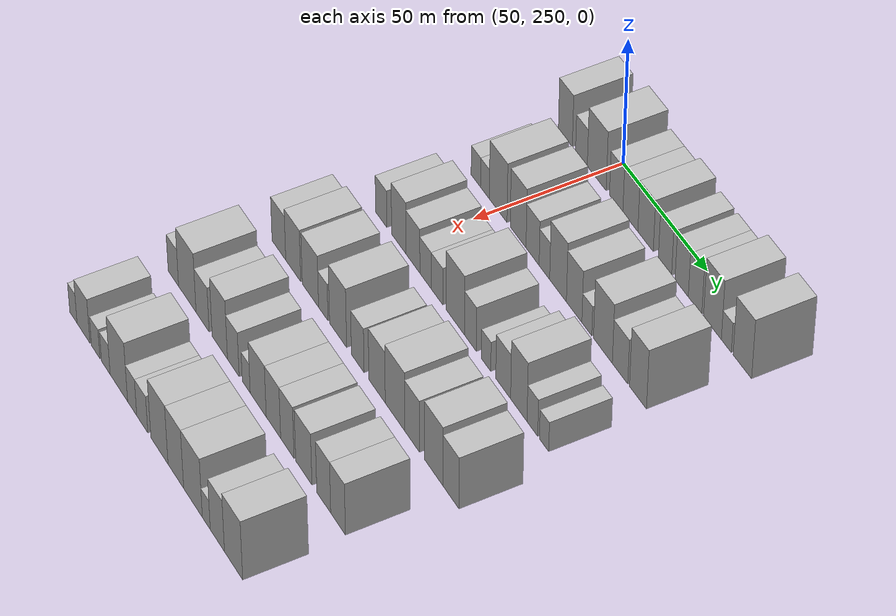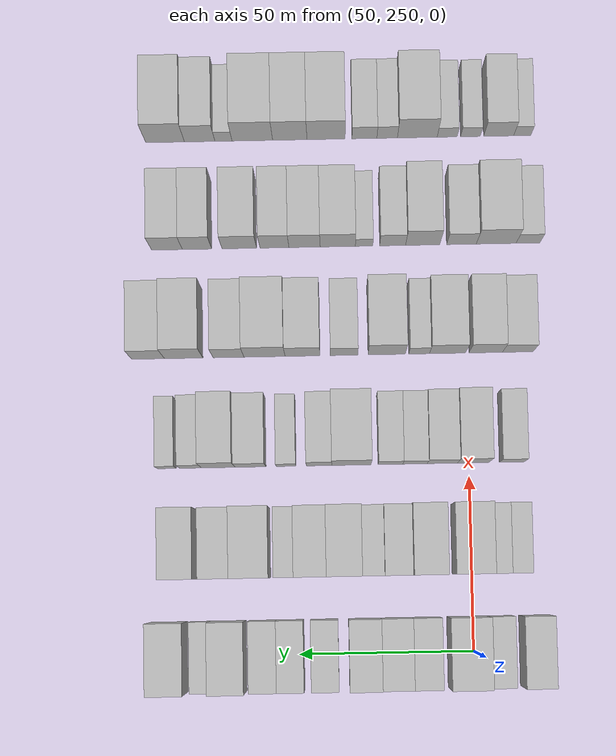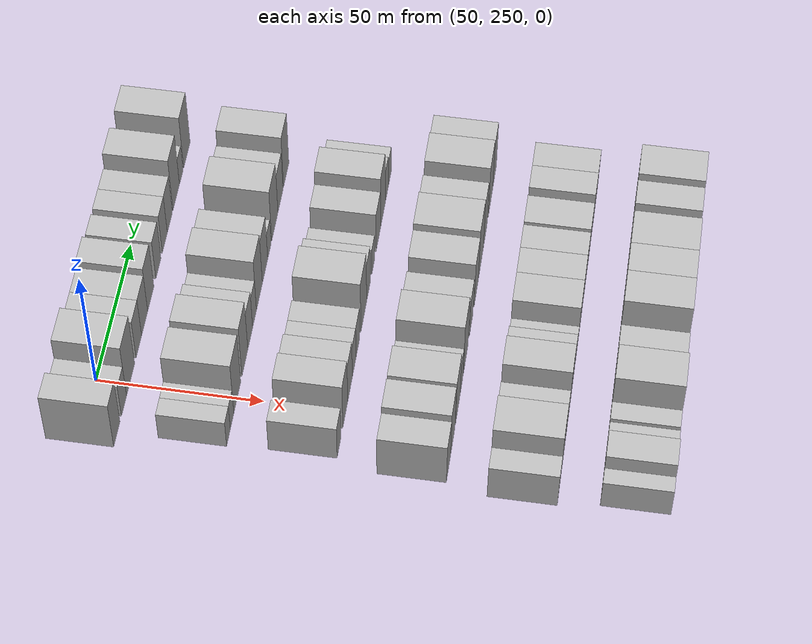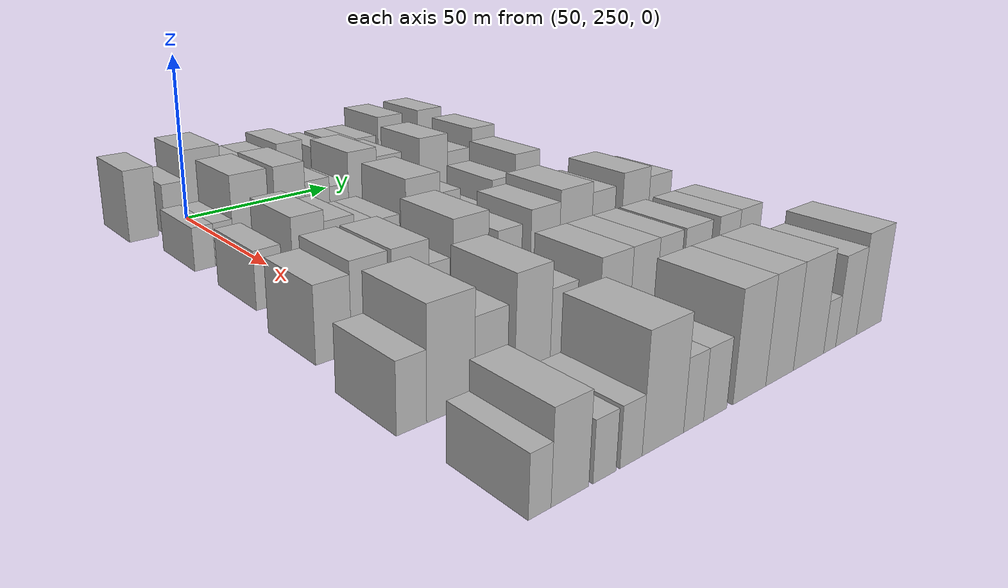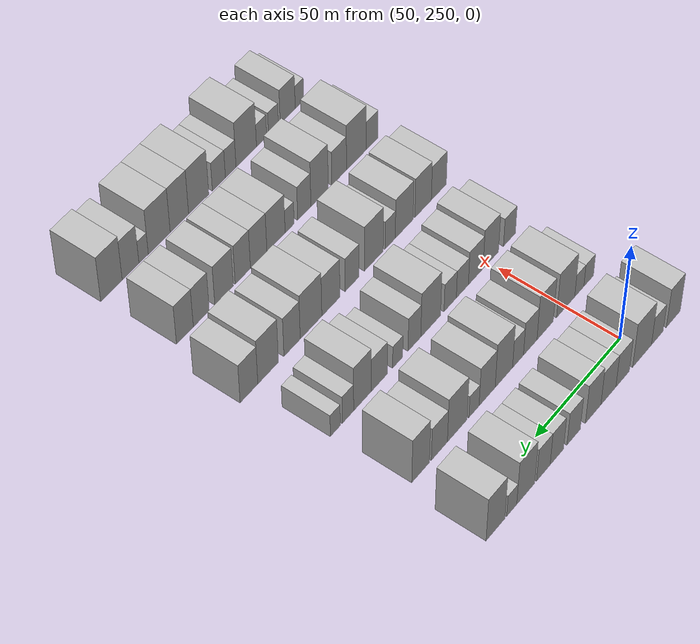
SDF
<sdf version="1.6">
 <world name="default">
  <model name="building_78">
   <static>1</static>
   <pose>50.0000 232.6043 0 0.000000 0.000000 0.000000</pose>
   <link name="link">
    <pose>0 0 10.50 0 0 0</pose>
    <collision name="collision"><geometry><box><size>20.0000 8.6318 21.0000</size></box></geometry></collision>
    <visual name="visual">
     <cast_shadows>0</cast_shadows>
     <geometry><box><size>20.0000 8.6318 21.0000</size></box></geometry>
     <material>
      <script>
       <uri>model://HANNAS_wall/materials/scripts</uri>
       <uri>model://HANNAS_wall/materials/textures</uri>
       <name>vrc/HANNAS_wall</name>
      </script>
     </material>
    </visual>
   </link>
  </model>
  <model name="building_79">
   <static>1</static>
   <pose>50.0000 242.5200 0 0.000000 0.000000 0.000000</pose>
   <link name="link">
    <pose>0 0 7.50 0 0 0</pose>
    <collision name="collision"><geometry><box><size>20.0000 7.1996 15.0000</size></box></geometry></collision>
    <visual name="visual">
     <cast_shadows>0</cast_shadows>
     <geometry><box><size>20.0000 7.1996 15.0000</size></box></geometry>
     <material>
      <script>
       <uri>model://HANNAS_wall/materials/scripts</uri>
       <uri>model://HANNAS_wall/materials/textures</uri>
       <name>vrc/HANNAS_wall</name>
      </script>
     </material>
    </visual>
   </link>
  </model>
  <model name="building_80">
   <static>1</static>
   <pose>50.0000 251.8541 0 0.000000 0.000000 0.000000</pose>
   <link name="link">
    <pose>0 0 12.00 0 0 0</pose>
    <collision name="collision"><geometry><box><size>20.0000 11.4685 24.0000</size></box></geometry></collision>
    <visual name="visual">
     <cast_shadows>0</cast_shadows>
     <geometry><box><size>20.0000 11.4685 24.0000</size></box></geometry>
     <material>
      <script>
       <uri>model://HANNAS_wall/materials/scripts</uri>
       <uri>model://HANNAS_wall/materials/textures</uri>
       <name>vrc/HANNAS_wall</name>
      </script>
     </material>
    </visual>
   </link>
  </model>
  <model name="building_81">
   <static>1</static>
   <pose>50.0000 263.6289 0 0.000000 0.000000 0.000000</pose>
   <link name="link">
    <pose>0 0 9.00 0 0 0</pose>
    <collision name="collision"><geometry><box><size>20.0000 8.0811 18.0000</size></box></geometry></collision>
    <visual name="visual">
     <cast_shadows>0</cast_shadows>
     <geometry><box><size>20.0000 8.0811 18.0000</size></box></geometry>
     <material>
      <script>
       <uri>model://HANNAS_wall/materials/scripts</uri>
       <uri>model://HANNAS_wall/materials/textures</uri>
       <name>vrc/HANNAS_wall</name>
      </script>
     </material>
    </visual>
   </link>
  </model>
  <model name="building_82">
   <static>1</static>
   <pose>50.0000 272.1463 0 0.000000 0.000000 0.000000</pose>
   <link name="link">
    <pose>0 0 9.00 0 0 0</pose>
    <collision name="collision"><geometry><box><size>20.0000 8.9538 18.0000</size></box></geometry></collision>
    <visual name="visual">
     <cast_shadows>0</cast_shadows>
     <geometry><box><size>20.0000 8.9538 18.0000</size></box></geometry>
     <material>
      <script>
       <uri>model://HANNAS_wall/materials/scripts</uri>
       <uri>model://HANNAS_wall/materials/textures</uri>
       <name>vrc/HANNAS_wall</name>
      </script>
     </material>
    </visual>
   </link>
  </model>
  <model name="building_83">
   <static>1</static>
   <pose>50.0000 281.1949 0 0.000000 0.000000 0.000000</pose>
   <link name="link">
    <pose>0 0 10.50 0 0 0</pose>
    <collision name="collision"><geometry><box><size>20.0000 9.1433 21.0000</size></box></geometry></collision>
    <visual name="visual">
     <cast_shadows>0</cast_shadows>
     <geometry><box><size>20.0000 9.1433 21.0000</size></box></geometry>
     <material>
      <script>
       <uri>model://HANNAS_wall/materials/scripts</uri>
       <uri>model://HANNAS_wall/materials/textures</uri>
       <name>vrc/HANNAS_wall</name>
      </script>
     </material>
    </visual>
   </link>
  </model>
  <model name="building_84">
   <static>1</static>
   <pose>50.0000 292.6517 0 0.000000 0.000000 0.000000</pose>
   <link name="link">
    <pose>0 0 9.00 0 0 0</pose>
    <collision name="collision"><geometry><box><size>20.0000 7.7703 18.0000</size></box></geometry></collision>
    <visual name="visual">
     <cast_shadows>0</cast_shadows>
     <geometry><box><size>20.0000 7.7703 18.0000</size></box></geometry>
     <material>
      <script>
       <uri>model://HANNAS_wall/materials/scripts</uri>
       <uri>model://HANNAS_wall/materials/textures</uri>
       <name>vrc/HANNAS_wall</name>
      </script>
     </material>
    </visual>
   </link>
  </model>
  <model name="building_85">
   <static>1</static>
   <pose>50.0000 302.3955 0 0.000000 0.000000 0.000000</pose>
   <link name="link">
    <pose>0 0 9.00 0 0 0</pose>
    <collision name="collision"><geometry><box><size>20.0000 7.7174 18.0000</size></box></geometry></collision>
    <visual name="visual">
     <cast_shadows>0</cast_shadows>
     <geometry><box><size>20.0000 7.7174 18.0000</size></box></geometry>
     <material>
      <script>
       <uri>model://HANNAS_wall/materials/scripts</uri>
       <uri>model://HANNAS_wall/materials/textures</uri>
       <name>vrc/HANNAS_wall</name>
      </script>
     </material>
    </visual>
   </link>
  </model>
  <model name="building_86">
   <static>1</static>
   <pose>50.0000 310.1619 0 0.000000 0.000000 0.000000</pose>
   <link name="link">
    <pose>0 0 9.00 0 0 0</pose>
    <collision name="collision"><geometry><box><size>20.0000 7.8153 18.0000</size></box></geometry></collision>
    <visual name="visual">
     <cast_shadows>0</cast_shadows>
     <geometry><box><size>20.0000 7.8153 18.0000</size></box></geometry>
     <material>
      <script>
       <uri>model://HANNAS_wall/materials/scripts</uri>
       <uri>model://HANNAS_wall/materials/textures</uri>
       <name>vrc/HANNAS_wall</name>
      </script>
     </material>
    </visual>
   </link>
  </model>
  <model name="building_87">
   <static>1</static>
   <pose>50.0000 320.1657 0 0.000000 0.000000 0.000000</pose>
   <link name="link">
    <pose>0 0 12.00 0 0 0</pose>
    <collision name="collision"><geometry><box><size>20.0000 10.1923 24.0000</size></box></geometry></collision>
    <visual name="visual">
     <cast_shadows>0</cast_shadows>
     <geometry><box><size>20.0000 10.1923 24.0000</size></box></geometry>
     <material>
      <script>
       <uri>model://HANNAS_wall/materials/scripts</uri>
       <uri>model://HANNAS_wall/materials/textures</uri>
       <name>vrc/HANNAS_wall</name>
      </script>
     </material>
    </visual>
   </link>
  </model>
  <model name="building_88">
   <static>1</static>
   <pose>50.0000 328.0957 0 0.000000 0.000000 0.000000</pose>
   <link name="link">
    <pose>0 0 6.00 0 0 0</pose>
    <collision name="collision"><geometry><box><size>20.0000 5.6677 12.0000</size></box></geometry></collision>
    <visual name="visual">
     <cast_shadows>0</cast_shadows>
     <geometry><box><size>20.0000 5.6677 12.0000</size></box></geometry>
     <material>
      <script>
       <uri>model://HANNAS_wall/materials/scripts</uri>
       <uri>model://HANNAS_wall/materials/textures</uri>
       <name>vrc/HANNAS_wall</name>
      </script>
     </material>
    </visual>
   </link>
  </model>
  <model name="building_89">
   <static>1</static>
   <pose>50.0000 337.1441 0 0.000000 0.000000 0.000000</pose>
   <link name="link">
    <pose>0 0 12.00 0 0 0</pose>
    <collision name="collision"><geometry><box><size>20.0000 10.4292 24.0000</size></box></geometry></collision>
    <visual name="visual">
     <cast_shadows>0</cast_shadows>
     <geometry><box><size>20.0000 10.4292 24.0000</size></box></geometry>
     <material>
      <script>
       <uri>model://HANNAS_wall/materials/scripts</uri>
       <uri>model://HANNAS_wall/materials/textures</uri>
       <name>vrc/HANNAS_wall</name>
      </script>
     </material>
    </visual>
   </link>
  </model>
  <model name="building_200">
   <static>1</static>
   <pose>82.0000 236.2181 0 0.000000 0.000000 0.000000</pose>
   <link name="link">
    <pose>0 0 6.00 0 0 0</pose>
    <collision name="collision"><geometry><box><size>20.0000 5.8722 12.0000</size></box></geometry></collision>
    <visual name="visual">
     <cast_shadows>0</cast_shadows>
     <geometry><box><size>20.0000 5.8722 12.0000</size></box></geometry>
     <material>
      <script>
       <uri>model://HANNAS_wall/materials/scripts</uri>
       <uri>model://HANNAS_wall/materials/textures</uri>
       <name>vrc/HANNAS_wall</name>
      </script>
     </material>
    </visual>
   </link>
  </model>
  <model name="building_201">
   <static>1</static>
   <pose>82.0000 241.9286 0 0.000000 0.000000 0.000000</pose>
   <link name="link">
    <pose>0 0 6.00 0 0 0</pose>
    <collision name="collision"><geometry><box><size>20.0000 5.5488 12.0000</size></box></geometry></collision>
    <visual name="visual">
     <cast_shadows>0</cast_shadows>
     <geometry><box><size>20.0000 5.5488 12.0000</size></box></geometry>
     <material>
      <script>
       <uri>model://HANNAS_wall/materials/scripts</uri>
       <uri>model://HANNAS_wall/materials/textures</uri>
       <name>vrc/HANNAS_wall</name>
      </script>
     </material>
    </visual>
   </link>
  </model>
  <model name="building_202">
   <static>1</static>
   <pose>82.0000 250.1904 0 0.000000 0.000000 0.000000</pose>
   <link name="link">
    <pose>0 0 12.00 0 0 0</pose>
    <collision name="collision"><geometry><box><size>20.0000 10.9749 24.0000</size></box></geometry></collision>
    <visual name="visual">
     <cast_shadows>0</cast_shadows>
     <geometry><box><size>20.0000 10.9749 24.0000</size></box></geometry>
     <material>
      <script>
       <uri>model://HANNAS_wall/materials/scripts</uri>
       <uri>model://HANNAS_wall/materials/textures</uri>
       <name>vrc/HANNAS_wall</name>
      </script>
     </material>
    </visual>
   </link>
  </model>
  <model name="building_203">
   <static>1</static>
   <pose>82.0000 262.5180 0 0.000000 0.000000 0.000000</pose>
   <link name="link">
    <pose>0 0 12.00 0 0 0</pose>
    <collision name="collision"><geometry><box><size>20.0000 9.6801 24.0000</size></box></geometry></collision>
    <visual name="visual">
     <cast_shadows>0</cast_shadows>
     <geometry><box><size>20.0000 9.6801 24.0000</size></box></geometry>
     <material>
      <script>
       <uri>model://HANNAS_wall/materials/scripts</uri>
       <uri>model://HANNAS_wall/materials/textures</uri>
       <name>vrc/HANNAS_wall</name>
      </script>
     </material>
    </visual>
   </link>
  </model>
  <model name="building_204">
   <static>1</static>
   <pose>82.0000 271.3422 0 0.000000 0.000000 0.000000</pose>
   <link name="link">
    <pose>0 0 9.00 0 0 0</pose>
    <collision name="collision"><geometry><box><size>20.0000 7.9683 18.0000</size></box></geometry></collision>
    <visual name="visual">
     <cast_shadows>0</cast_shadows>
     <geometry><box><size>20.0000 7.9683 18.0000</size></box></geometry>
     <material>
      <script>
       <uri>model://HANNAS_wall/materials/scripts</uri>
       <uri>model://HANNAS_wall/materials/textures</uri>
       <name>vrc/HANNAS_wall</name>
      </script>
     </material>
    </visual>
   </link>
  </model>
  <model name="building_205">
   <static>1</static>
   <pose>82.0000 278.5245 0 0.000000 0.000000 0.000000</pose>
   <link name="link">
    <pose>0 0 7.50 0 0 0</pose>
    <collision name="collision"><geometry><box><size>20.0000 6.3963 15.0000</size></box></geometry></collision>
    <visual name="visual">
     <cast_shadows>0</cast_shadows>
     <geometry><box><size>20.0000 6.3963 15.0000</size></box></geometry>
     <material>
      <script>
       <uri>model://HANNAS_wall/materials/scripts</uri>
       <uri>model://HANNAS_wall/materials/textures</uri>
       <name>vrc/HANNAS_wall</name>
      </script>
     </material>
    </visual>
   </link>
  </model>
  <model name="building_206">
   <static>1</static>
   <pose>82.0000 286.7541 0 0.000000 0.000000 0.000000</pose>
   <link name="link">
    <pose>0 0 12.00 0 0 0</pose>
    <collision name="collision"><geometry><box><size>20.0000 10.0629 24.0000</size></box></geometry></collision>
    <visual name="visual">
     <cast_shadows>0</cast_shadows>
     <geometry><box><size>20.0000 10.0629 24.0000</size></box></geometry>
     <material>
      <script>
       <uri>model://HANNAS_wall/materials/scripts</uri>
       <uri>model://HANNAS_wall/materials/textures</uri>
       <name>vrc/HANNAS_wall</name>
      </script>
     </material>
    </visual>
   </link>
  </model>
  <model name="building_207">
   <static>1</static>
   <pose>82.0000 296.4024 0 0.000000 0.000000 0.000000</pose>
   <link name="link">
    <pose>0 0 10.50 0 0 0</pose>
    <collision name="collision"><geometry><box><size>20.0000 9.2338 21.0000</size></box></geometry></collision>
    <visual name="visual">
     <cast_shadows>0</cast_shadows>
     <geometry><box><size>20.0000 9.2338 21.0000</size></box></geometry>
     <material>
      <script>
       <uri>model://HANNAS_wall/materials/scripts</uri>
       <uri>model://HANNAS_wall/materials/textures</uri>
       <name>vrc/HANNAS_wall</name>
      </script>
     </material>
    </visual>
   </link>
  </model>
  <model name="building_208">
   <static>1</static>
   <pose>82.0000 303.9419 0 0.000000 0.000000 0.000000</pose>
   <link name="link">
    <pose>0 0 6.00 0 0 0</pose>
    <collision name="collision"><geometry><box><size>20.0000 5.8452 12.0000</size></box></geometry></collision>
    <visual name="visual">
     <cast_shadows>0</cast_shadows>
     <geometry><box><size>20.0000 5.8452 12.0000</size></box></geometry>
     <material>
      <script>
       <uri>model://HANNAS_wall/materials/scripts</uri>
       <uri>model://HANNAS_wall/materials/textures</uri>
       <name>vrc/HANNAS_wall</name>
      </script>
     </material>
    </visual>
   </link>
  </model>
  <model name="building_209">
   <static>1</static>
   <pose>82.0000 313.3981 0 0.000000 0.000000 0.000000</pose>
   <link name="link">
    <pose>0 0 12.00 0 0 0</pose>
    <collision name="collision"><geometry><box><size>20.0000 11.0672 24.0000</size></box></geometry></collision>
    <visual name="visual">
     <cast_shadows>0</cast_shadows>
     <geometry><box><size>20.0000 11.0672 24.0000</size></box></geometry>
     <material>
      <script>
       <uri>model://HANNAS_wall/materials/scripts</uri>
       <uri>model://HANNAS_wall/materials/textures</uri>
       <name>vrc/HANNAS_wall</name>
      </script>
     </material>
    </visual>
   </link>
  </model>
  <model name="building_210">
   <static>1</static>
   <pose>82.0000 323.4202 0 0.000000 0.000000 0.000000</pose>
   <link name="link">
    <pose>0 0 9.00 0 0 0</pose>
    <collision name="collision"><geometry><box><size>20.0000 8.9770 18.0000</size></box></geometry></collision>
    <visual name="visual">
     <cast_shadows>0</cast_shadows>
     <geometry><box><size>20.0000 8.9770 18.0000</size></box></geometry>
     <material>
      <script>
       <uri>model://HANNAS_wall/materials/scripts</uri>
       <uri>model://HANNAS_wall/materials/textures</uri>
       <name>vrc/HANNAS_wall</name>
      </script>
     </material>
    </visual>
   </link>
  </model>
  <model name="building_211">
   <static>1</static>
   <pose>82.0000 333.7911 0 0.000000 0.000000 0.000000</pose>
   <link name="link">
    <pose>0 0 12.00 0 0 0</pose>
    <collision name="collision"><geometry><box><size>20.0000 9.7648 24.0000</size></box></geometry></collision>
    <visual name="visual">
     <cast_shadows>0</cast_shadows>
     <geometry><box><size>20.0000 9.7648 24.0000</size></box></geometry>
     <material>
      <script>
       <uri>model://HANNAS_wall/materials/scripts</uri>
       <uri>model://HANNAS_wall/materials/textures</uri>
       <name>vrc/HANNAS_wall</name>
      </script>
     </material>
    </visual>
   </link>
  </model>
  <model name="building_320">
   <static>1</static>
   <pose>114.0000 237.6507 0 0.000000 0.000000 0.000000</pose>
   <link name="link">
    <pose>0 0 7.50 0 0 0</pose>
    <collision name="collision"><geometry><box><size>20.0000 7.2368 15.0000</size></box></geometry></collision>
    <visual name="visual">
     <cast_shadows>0</cast_shadows>
     <geometry><box><size>20.0000 7.2368 15.0000</size></box></geometry>
     <material>
      <script>
       <uri>model://HANNAS_wall/materials/scripts</uri>
       <uri>model://HANNAS_wall/materials/textures</uri>
       <name>vrc/HANNAS_wall</name>
      </script>
     </material>
    </visual>
   </link>
  </model>
  <model name="building_321">
   <static>1</static>
   <pose>114.0000 248.8468 0 0.000000 0.000000 0.000000</pose>
   <link name="link">
    <pose>0 0 10.50 0 0 0</pose>
    <collision name="collision"><geometry><box><size>20.0000 9.1554 21.0000</size></box></geometry></collision>
    <visual name="visual">
     <cast_shadows>0</cast_shadows>
     <geometry><box><size>20.0000 9.1554 21.0000</size></box></geometry>
     <material>
      <script>
       <uri>model://HANNAS_wall/materials/scripts</uri>
       <uri>model://HANNAS_wall/materials/textures</uri>
       <name>vrc/HANNAS_wall</name>
      </script>
     </material>
    </visual>
   </link>
  </model>
  <model name="building_322">
   <static>1</static>
   <pose>114.0000 257.7861 0 0.000000 0.000000 0.000000</pose>
   <link name="link">
    <pose>0 0 9.00 0 0 0</pose>
    <collision name="collision"><geometry><box><size>20.0000 8.7233 18.0000</size></box></geometry></collision>
    <visual name="visual">
     <cast_shadows>0</cast_shadows>
     <geometry><box><size>20.0000 8.7233 18.0000</size></box></geometry>
     <material>
      <script>
       <uri>model://HANNAS_wall/materials/scripts</uri>
       <uri>model://HANNAS_wall/materials/textures</uri>
       <name>vrc/HANNAS_wall</name>
      </script>
     </material>
    </visual>
   </link>
  </model>
  <model name="building_323">
   <static>1</static>
   <pose>114.0000 265.6810 0 0.000000 0.000000 0.000000</pose>
   <link name="link">
    <pose>0 0 7.50 0 0 0</pose>
    <collision name="collision"><geometry><box><size>20.0000 7.0664 15.0000</size></box></geometry></collision>
    <visual name="visual">
     <cast_shadows>0</cast_shadows>
     <geometry><box><size>20.0000 7.0664 15.0000</size></box></geometry>
     <material>
      <script>
       <uri>model://HANNAS_wall/materials/scripts</uri>
       <uri>model://HANNAS_wall/materials/textures</uri>
       <name>vrc/HANNAS_wall</name>
      </script>
     </material>
    </visual>
   </link>
  </model>
  <model name="building_324">
   <static>1</static>
   <pose>114.0000 272.7999 0 0.000000 0.000000 0.000000</pose>
   <link name="link">
    <pose>0 0 7.50 0 0 0</pose>
    <collision name="collision"><geometry><box><size>20.0000 7.1715 15.0000</size></box></geometry></collision>
    <visual name="visual">
     <cast_shadows>0</cast_shadows>
     <geometry><box><size>20.0000 7.1715 15.0000</size></box></geometry>
     <material>
      <script>
       <uri>model://HANNAS_wall/materials/scripts</uri>
       <uri>model://HANNAS_wall/materials/textures</uri>
       <name>vrc/HANNAS_wall</name>
      </script>
     </material>
    </visual>
   </link>
  </model>
  <model name="building_325">
   <static>1</static>
   <pose>114.0000 284.0585 0 0.000000 0.000000 0.000000</pose>
   <link name="link">
    <pose>0 0 12.00 0 0 0</pose>
    <collision name="collision"><geometry><box><size>20.0000 11.3458 24.0000</size></box></geometry></collision>
    <visual name="visual">
     <cast_shadows>0</cast_shadows>
     <geometry><box><size>20.0000 11.3458 24.0000</size></box></geometry>
     <material>
      <script>
       <uri>model://HANNAS_wall/materials/scripts</uri>
       <uri>model://HANNAS_wall/materials/textures</uri>
       <name>vrc/HANNAS_wall</name>
      </script>
     </material>
    </visual>
   </link>
  </model>
  <model name="building_326">
   <static>1</static>
   <pose>114.0000 293.3712 0 0.000000 0.000000 0.000000</pose>
   <link name="link">
    <pose>0 0 9.00 0 0 0</pose>
    <collision name="collision"><geometry><box><size>20.0000 7.2796 18.0000</size></box></geometry></collision>
    <visual name="visual">
     <cast_shadows>0</cast_shadows>
     <geometry><box><size>20.0000 7.2796 18.0000</size></box></geometry>
     <material>
      <script>
       <uri>model://HANNAS_wall/materials/scripts</uri>
       <uri>model://HANNAS_wall/materials/textures</uri>
       <name>vrc/HANNAS_wall</name>
      </script>
     </material>
    </visual>
   </link>
  </model>
  <model name="building_327">
   <static>1</static>
   <pose>114.0000 302.8656 0 0.000000 0.000000 0.000000</pose>
   <link name="link">
    <pose>0 0 6.00 0 0 0</pose>
    <collision name="collision"><geometry><box><size>20.0000 5.7092 12.0000</size></box></geometry></collision>
    <visual name="visual">
     <cast_shadows>0</cast_shadows>
     <geometry><box><size>20.0000 5.7092 12.0000</size></box></geometry>
     <material>
      <script>
       <uri>model://HANNAS_wall/materials/scripts</uri>
       <uri>model://HANNAS_wall/materials/textures</uri>
       <name>vrc/HANNAS_wall</name>
      </script>
     </material>
    </visual>
   </link>
  </model>
  <model name="building_328">
   <static>1</static>
   <pose>114.0000 313.1649 0 0.000000 0.000000 0.000000</pose>
   <link name="link">
    <pose>0 0 9.00 0 0 0</pose>
    <collision name="collision"><geometry><box><size>20.0000 8.8893 18.0000</size></box></geometry></collision>
    <visual name="visual">
     <cast_shadows>0</cast_shadows>
     <geometry><box><size>20.0000 8.8893 18.0000</size></box></geometry>
     <material>
      <script>
       <uri>model://HANNAS_wall/materials/scripts</uri>
       <uri>model://HANNAS_wall/materials/textures</uri>
       <name>vrc/HANNAS_wall</name>
      </script>
     </material>
    </visual>
   </link>
  </model>
  <model name="building_329">
   <static>1</static>
   <pose>114.0000 322.4756 0 0.000000 0.000000 0.000000</pose>
   <link name="link">
    <pose>0 0 12.00 0 0 0</pose>
    <collision name="collision"><geometry><box><size>20.0000 9.7321 24.0000</size></box></geometry></collision>
    <visual name="visual">
     <cast_shadows>0</cast_shadows>
     <geometry><box><size>20.0000 9.7321 24.0000</size></box></geometry>
     <material>
      <script>
       <uri>model://HANNAS_wall/materials/scripts</uri>
       <uri>model://HANNAS_wall/materials/textures</uri>
       <name>vrc/HANNAS_wall</name>
      </script>
     </material>
    </visual>
   </link>
  </model>
  <model name="building_330">
   <static>1</static>
   <pose>114.0000 330.4905 0 0.000000 0.000000 0.000000</pose>
   <link name="link">
    <pose>0 0 7.50 0 0 0</pose>
    <collision name="collision"><geometry><box><size>20.0000 6.2977 15.0000</size></box></geometry></collision>
    <visual name="visual">
     <cast_shadows>0</cast_shadows>
     <geometry><box><size>20.0000 6.2977 15.0000</size></box></geometry>
     <material>
      <script>
       <uri>model://HANNAS_wall/materials/scripts</uri>
       <uri>model://HANNAS_wall/materials/textures</uri>
       <name>vrc/HANNAS_wall</name>
      </script>
     </material>
    </visual>
   </link>
  </model>
  <model name="building_331">
   <static>1</static>
   <pose>114.0000 337.3561 0 0.000000 0.000000 0.000000</pose>
   <link name="link">
    <pose>0 0 6.00 0 0 0</pose>
    <collision name="collision"><geometry><box><size>20.0000 5.4335 12.0000</size></box></geometry></collision>
    <visual name="visual">
     <cast_shadows>0</cast_shadows>
     <geometry><box><size>20.0000 5.4335 12.0000</size></box></geometry>
     <material>
      <script>
       <uri>model://HANNAS_wall/materials/scripts</uri>
       <uri>model://HANNAS_wall/materials/textures</uri>
       <name>vrc/HANNAS_wall</name>
      </script>
     </material>
    </visual>
   </link>
  </model>
  <model name="building_433">
   <static>1</static>
   <pose>146.0000 235.0147 0 0.000000 0.000000 0.000000</pose>
   <link name="link">
    <pose>0 0 9.00 0 0 0</pose>
    <collision name="collision"><geometry><box><size>20.0000 8.9605 18.0000</size></box></geometry></collision>
    <visual name="visual">
     <cast_shadows>0</cast_shadows>
     <geometry><box><size>20.0000 8.9605 18.0000</size></box></geometry>
     <material>
      <script>
       <uri>model://HANNAS_wall/materials/scripts</uri>
       <uri>model://HANNAS_wall/materials/textures</uri>
       <name>vrc/HANNAS_wall</name>
      </script>
     </material>
    </visual>
   </link>
  </model>
  <model name="building_434">
   <static>1</static>
   <pose>146.0000 244.3794 0 0.000000 0.000000 0.000000</pose>
   <link name="link">
    <pose>0 0 10.50 0 0 0</pose>
    <collision name="collision"><geometry><box><size>20.0000 9.7688 21.0000</size></box></geometry></collision>
    <visual name="visual">
     <cast_shadows>0</cast_shadows>
     <geometry><box><size>20.0000 9.7688 21.0000</size></box></geometry>
     <material>
      <script>
       <uri>model://HANNAS_wall/materials/scripts</uri>
       <uri>model://HANNAS_wall/materials/textures</uri>
       <name>vrc/HANNAS_wall</name>
      </script>
     </material>
    </visual>
   </link>
  </model>
  <model name="building_435">
   <static>1</static>
   <pose>146.0000 255.5075 0 0.000000 0.000000 0.000000</pose>
   <link name="link">
    <pose>0 0 10.50 0 0 0</pose>
    <collision name="collision"><geometry><box><size>20.0000 10.4875 21.0000</size></box></geometry></collision>
    <visual name="visual">
     <cast_shadows>0</cast_shadows>
     <geometry><box><size>20.0000 10.4875 21.0000</size></box></geometry>
     <material>
      <script>
       <uri>model://HANNAS_wall/materials/scripts</uri>
       <uri>model://HANNAS_wall/materials/textures</uri>
       <name>vrc/HANNAS_wall</name>
      </script>
     </material>
    </visual>
   </link>
  </model>
  <model name="building_436">
   <static>1</static>
   <pose>146.0000 263.7590 0 0.000000 0.000000 0.000000</pose>
   <link name="link">
    <pose>0 0 7.50 0 0 0</pose>
    <collision name="collision"><geometry><box><size>20.0000 6.0154 15.0000</size></box></geometry></collision>
    <visual name="visual">
     <cast_shadows>0</cast_shadows>
     <geometry><box><size>20.0000 6.0154 15.0000</size></box></geometry>
     <material>
      <script>
       <uri>model://HANNAS_wall/materials/scripts</uri>
       <uri>model://HANNAS_wall/materials/textures</uri>
       <name>vrc/HANNAS_wall</name>
      </script>
     </material>
    </visual>
   </link>
  </model>
  <model name="building_437">
   <static>1</static>
   <pose>146.0000 273.1737 0 0.000000 0.000000 0.000000</pose>
   <link name="link">
    <pose>0 0 12.00 0 0 0</pose>
    <collision name="collision"><geometry><box><size>20.0000 10.8140 24.0000</size></box></geometry></collision>
    <visual name="visual">
     <cast_shadows>0</cast_shadows>
     <geometry><box><size>20.0000 10.8140 24.0000</size></box></geometry>
     <material>
      <script>
       <uri>model://HANNAS_wall/materials/scripts</uri>
       <uri>model://HANNAS_wall/materials/textures</uri>
       <name>vrc/HANNAS_wall</name>
      </script>
     </material>
    </visual>
   </link>
  </model>
  <model name="building_438">
   <static>1</static>
   <pose>146.0000 285.5584 0 0.000000 0.000000 0.000000</pose>
   <link name="link">
    <pose>0 0 9.00 0 0 0</pose>
    <collision name="collision"><geometry><box><size>20.0000 7.9553 18.0000</size></box></geometry></collision>
    <visual name="visual">
     <cast_shadows>0</cast_shadows>
     <geometry><box><size>20.0000 7.9553 18.0000</size></box></geometry>
     <material>
      <script>
       <uri>model://HANNAS_wall/materials/scripts</uri>
       <uri>model://HANNAS_wall/materials/textures</uri>
       <name>vrc/HANNAS_wall</name>
      </script>
     </material>
    </visual>
   </link>
  </model>
  <model name="building_439">
   <static>1</static>
   <pose>146.0000 297.6039 0 0.000000 0.000000 0.000000</pose>
   <link name="link">
    <pose>0 0 10.50 0 0 0</pose>
    <collision name="collision"><geometry><box><size>20.0000 10.1357 21.0000</size></box></geometry></collision>
    <visual name="visual">
     <cast_shadows>0</cast_shadows>
     <geometry><box><size>20.0000 10.1357 21.0000</size></box></geometry>
     <material>
      <script>
       <uri>model://HANNAS_wall/materials/scripts</uri>
       <uri>model://HANNAS_wall/materials/textures</uri>
       <name>vrc/HANNAS_wall</name>
      </script>
     </material>
    </visual>
   </link>
  </model>
  <model name="building_440">
   <static>1</static>
   <pose>146.0000 308.6608 0 0.000000 0.000000 0.000000</pose>
   <link name="link">
    <pose>0 0 12.00 0 0 0</pose>
    <collision name="collision"><geometry><box><size>20.0000 11.9781 24.0000</size></box></geometry></collision>
    <visual name="visual">
     <cast_shadows>0</cast_shadows>
     <geometry><box><size>20.0000 11.9781 24.0000</size></box></geometry>
     <material>
      <script>
       <uri>model://HANNAS_wall/materials/scripts</uri>
       <uri>model://HANNAS_wall/materials/textures</uri>
       <name>vrc/HANNAS_wall</name>
      </script>
     </material>
    </visual>
   </link>
  </model>
  <model name="building_441">
   <static>1</static>
   <pose>146.0000 319.1244 0 0.000000 0.000000 0.000000</pose>
   <link name="link">
    <pose>0 0 10.50 0 0 0</pose>
    <collision name="collision"><geometry><box><size>20.0000 8.9492 21.0000</size></box></geometry></collision>
    <visual name="visual">
     <cast_shadows>0</cast_shadows>
     <geometry><box><size>20.0000 8.9492 21.0000</size></box></geometry>
     <material>
      <script>
       <uri>model://HANNAS_wall/materials/scripts</uri>
       <uri>model://HANNAS_wall/materials/textures</uri>
       <name>vrc/HANNAS_wall</name>
      </script>
     </material>
    </visual>
   </link>
  </model>
  <model name="building_442">
   <static>1</static>
   <pose>146.0000 332.1683 0 0.000000 0.000000 0.000000</pose>
   <link name="link">
    <pose>0 0 12.00 0 0 0</pose>
    <collision name="collision"><geometry><box><size>20.0000 11.1386 24.0000</size></box></geometry></collision>
    <visual name="visual">
     <cast_shadows>0</cast_shadows>
     <geometry><box><size>20.0000 11.1386 24.0000</size></box></geometry>
     <material>
      <script>
       <uri>model://HANNAS_wall/materials/scripts</uri>
       <uri>model://HANNAS_wall/materials/textures</uri>
       <name>vrc/HANNAS_wall</name>
      </script>
     </material>
    </visual>
   </link>
  </model>
  <model name="building_443">
   <static>1</static>
   <pose>146.0000 342.4776 0 0.000000 0.000000 0.000000</pose>
   <link name="link">
    <pose>0 0 10.50 0 0 0</pose>
    <collision name="collision"><geometry><box><size>20.0000 9.4798 21.0000</size></box></geometry></collision>
    <visual name="visual">
     <cast_shadows>0</cast_shadows>
     <geometry><box><size>20.0000 9.4798 21.0000</size></box></geometry>
     <material>
      <script>
       <uri>model://HANNAS_wall/materials/scripts</uri>
       <uri>model://HANNAS_wall/materials/textures</uri>
       <name>vrc/HANNAS_wall</name>
      </script>
     </material>
    </visual>
   </link>
  </model>
  <model name="building_556">
   <static>1</static>
   <pose>178.0000 231.1336 0 0.000000 0.000000 0.000000</pose>
   <link name="link">
    <pose>0 0 7.50 0 0 0</pose>
    <collision name="collision"><geometry><box><size>20.0000 6.9791 15.0000</size></box></geometry></collision>
    <visual name="visual">
     <cast_shadows>0</cast_shadows>
     <geometry><box><size>20.0000 6.9791 15.0000</size></box></geometry>
     <material>
      <script>
       <uri>model://HANNAS_wall/materials/scripts</uri>
       <uri>model://HANNAS_wall/materials/textures</uri>
       <name>vrc/HANNAS_wall</name>
      </script>
     </material>
    </visual>
   </link>
  </model>
  <model name="building_557">
   <static>1</static>
   <pose>178.0000 240.4613 0 0.000000 0.000000 0.000000</pose>
   <link name="link">
    <pose>0 0 12.00 0 0 0</pose>
    <collision name="collision"><geometry><box><size>20.0000 11.6762 24.0000</size></box></geometry></collision>
    <visual name="visual">
     <cast_shadows>0</cast_shadows>
     <geometry><box><size>20.0000 11.6762 24.0000</size></box></geometry>
     <material>
      <script>
       <uri>model://HANNAS_wall/materials/scripts</uri>
       <uri>model://HANNAS_wall/materials/textures</uri>
       <name>vrc/HANNAS_wall</name>
      </script>
     </material>
    </visual>
   </link>
  </model>
  <model name="building_558">
   <static>1</static>
   <pose>178.0000 250.6284 0 0.000000 0.000000 0.000000</pose>
   <link name="link">
    <pose>0 0 9.00 0 0 0</pose>
    <collision name="collision"><geometry><box><size>20.0000 8.6581 18.0000</size></box></geometry></collision>
    <visual name="visual">
     <cast_shadows>0</cast_shadows>
     <geometry><box><size>20.0000 8.6581 18.0000</size></box></geometry>
     <material>
      <script>
       <uri>model://HANNAS_wall/materials/scripts</uri>
       <uri>model://HANNAS_wall/materials/textures</uri>
       <name>vrc/HANNAS_wall</name>
      </script>
     </material>
    </visual>
   </link>
  </model>
  <model name="building_559">
   <static>1</static>
   <pose>178.0000 261.9568 0 0.000000 0.000000 0.000000</pose>
   <link name="link">
    <pose>0 0 12.00 0 0 0</pose>
    <collision name="collision"><geometry><box><size>20.0000 9.9989 24.0000</size></box></geometry></collision>
    <visual name="visual">
     <cast_shadows>0</cast_shadows>
     <geometry><box><size>20.0000 9.9989 24.0000</size></box></geometry>
     <material>
      <script>
       <uri>model://HANNAS_wall/materials/scripts</uri>
       <uri>model://HANNAS_wall/materials/textures</uri>
       <name>vrc/HANNAS_wall</name>
      </script>
     </material>
    </visual>
   </link>
  </model>
  <model name="building_560">
   <static>1</static>
   <pose>178.0000 270.7492 0 0.000000 0.000000 0.000000</pose>
   <link name="link">
    <pose>0 0 9.00 0 0 0</pose>
    <collision name="collision"><geometry><box><size>20.0000 7.5858 18.0000</size></box></geometry></collision>
    <visual name="visual">
     <cast_shadows>0</cast_shadows>
     <geometry><box><size>20.0000 7.5858 18.0000</size></box></geometry>
     <material>
      <script>
       <uri>model://HANNAS_wall/materials/scripts</uri>
       <uri>model://HANNAS_wall/materials/textures</uri>
       <name>vrc/HANNAS_wall</name>
      </script>
     </material>
    </visual>
   </link>
  </model>
  <model name="building_561">
   <static>1</static>
   <pose>178.0000 279.0946 0 0.000000 0.000000 0.000000</pose>
   <link name="link">
    <pose>0 0 6.00 0 0 0</pose>
    <collision name="collision"><geometry><box><size>20.0000 5.1049 12.0000</size></box></geometry></collision>
    <visual name="visual">
     <cast_shadows>0</cast_shadows>
     <geometry><box><size>20.0000 5.1049 12.0000</size></box></geometry>
     <material>
      <script>
       <uri>model://HANNAS_wall/materials/scripts</uri>
       <uri>model://HANNAS_wall/materials/textures</uri>
       <name>vrc/HANNAS_wall</name>
      </script>
     </material>
    </visual>
   </link>
  </model>
  <model name="building_562">
   <static>1</static>
   <pose>178.0000 286.7829 0 0.000000 0.000000 0.000000</pose>
   <link name="link">
    <pose>0 0 10.50 0 0 0</pose>
    <collision name="collision"><geometry><box><size>20.0000 10.2717 21.0000</size></box></geometry></collision>
    <visual name="visual">
     <cast_shadows>0</cast_shadows>
     <geometry><box><size>20.0000 10.2717 21.0000</size></box></geometry>
     <material>
      <script>
       <uri>model://HANNAS_wall/materials/scripts</uri>
       <uri>model://HANNAS_wall/materials/textures</uri>
       <name>vrc/HANNAS_wall</name>
      </script>
     </material>
    </visual>
   </link>
  </model>
  <model name="building_563">
   <static>1</static>
   <pose>178.0000 296.4885 0 0.000000 0.000000 0.000000</pose>
   <link name="link">
    <pose>0 0 10.50 0 0 0</pose>
    <collision name="collision"><geometry><box><size>20.0000 9.1396 21.0000</size></box></geometry></collision>
    <visual name="visual">
     <cast_shadows>0</cast_shadows>
     <geometry><box><size>20.0000 9.1396 21.0000</size></box></geometry>
     <material>
      <script>
       <uri>model://HANNAS_wall/materials/scripts</uri>
       <uri>model://HANNAS_wall/materials/textures</uri>
       <name>vrc/HANNAS_wall</name>
      </script>
     </material>
    </visual>
   </link>
  </model>
  <model name="building_564">
   <static>1</static>
   <pose>178.0000 305.2823 0 0.000000 0.000000 0.000000</pose>
   <link name="link">
    <pose>0 0 10.50 0 0 0</pose>
    <collision name="collision"><geometry><box><size>20.0000 8.4481 21.0000</size></box></geometry></collision>
    <visual name="visual">
     <cast_shadows>0</cast_shadows>
     <geometry><box><size>20.0000 8.4481 21.0000</size></box></geometry>
     <material>
      <script>
       <uri>model://HANNAS_wall/materials/scripts</uri>
       <uri>model://HANNAS_wall/materials/textures</uri>
       <name>vrc/HANNAS_wall</name>
      </script>
     </material>
    </visual>
   </link>
  </model>
  <model name="building_565">
   <static>1</static>
   <pose>178.0000 315.5600 0 0.000000 0.000000 0.000000</pose>
   <link name="link">
    <pose>0 0 10.50 0 0 0</pose>
    <collision name="collision"><geometry><box><size>20.0000 10.1074 21.0000</size></box></geometry></collision>
    <visual name="visual">
     <cast_shadows>0</cast_shadows>
     <geometry><box><size>20.0000 10.1074 21.0000</size></box></geometry>
     <material>
      <script>
       <uri>model://HANNAS_wall/materials/scripts</uri>
       <uri>model://HANNAS_wall/materials/textures</uri>
       <name>vrc/HANNAS_wall</name>
      </script>
     </material>
    </visual>
   </link>
  </model>
  <model name="building_566">
   <static>1</static>
   <pose>178.0000 327.8993 0 0.000000 0.000000 0.000000</pose>
   <link name="link">
    <pose>0 0 10.50 0 0 0</pose>
    <collision name="collision"><geometry><box><size>20.0000 8.5711 21.0000</size></box></geometry></collision>
    <visual name="visual">
     <cast_shadows>0</cast_shadows>
     <geometry><box><size>20.0000 8.5711 21.0000</size></box></geometry>
     <material>
      <script>
       <uri>model://HANNAS_wall/materials/scripts</uri>
       <uri>model://HANNAS_wall/materials/textures</uri>
       <name>vrc/HANNAS_wall</name>
      </script>
     </material>
    </visual>
   </link>
  </model>
  <model name="building_567">
   <static>1</static>
   <pose>178.0000 336.6868 0 0.000000 0.000000 0.000000</pose>
   <link name="link">
    <pose>0 0 10.50 0 0 0</pose>
    <collision name="collision"><geometry><box><size>20.0000 9.0038 21.0000</size></box></geometry></collision>
    <visual name="visual">
     <cast_shadows>0</cast_shadows>
     <geometry><box><size>20.0000 9.0038 21.0000</size></box></geometry>
     <material>
      <script>
       <uri>model://HANNAS_wall/materials/scripts</uri>
       <uri>model://HANNAS_wall/materials/textures</uri>
       <name>vrc/HANNAS_wall</name>
      </script>
     </material>
    </visual>
   </link>
  </model>
  <model name="building_682">
   <static>1</static>
   <pose>210.0000 231.9219 0 0.000000 0.000000 0.000000</pose>
   <link name="link">
    <pose>0 0 6.00 0 0 0</pose>
    <collision name="collision"><geometry><box><size>20.0000 5.0518 12.0000</size></box></geometry></collision>
    <visual name="visual">
     <cast_shadows>0</cast_shadows>
     <geometry><box><size>20.0000 5.0518 12.0000</size></box></geometry>
     <material>
      <script>
       <uri>model://HANNAS_wall/materials/scripts</uri>
       <uri>model://HANNAS_wall/materials/textures</uri>
       <name>vrc/HANNAS_wall</name>
      </script>
     </material>
    </visual>
   </link>
  </model>
  <model name="building_683">
   <static>1</static>
   <pose>210.0000 238.8668 0 0.000000 0.000000 0.000000</pose>
   <link name="link">
    <pose>0 0 9.00 0 0 0</pose>
    <collision name="collision"><geometry><box><size>20.0000 8.8379 18.0000</size></box></geometry></collision>
    <visual name="visual">
     <cast_shadows>0</cast_shadows>
     <geometry><box><size>20.0000 8.8379 18.0000</size></box></geometry>
     <material>
      <script>
       <uri>model://HANNAS_wall/materials/scripts</uri>
       <uri>model://HANNAS_wall/materials/textures</uri>
       <name>vrc/HANNAS_wall</name>
      </script>
     </material>
    </visual>
   </link>
  </model>
  <model name="building_684">
   <static>1</static>
   <pose>210.0000 247.1802 0 0.000000 0.000000 0.000000</pose>
   <link name="link">
    <pose>0 0 6.00 0 0 0</pose>
    <collision name="collision"><geometry><box><size>20.0000 5.7890 12.0000</size></box></geometry></collision>
    <visual name="visual">
     <cast_shadows>0</cast_shadows>
     <geometry><box><size>20.0000 5.7890 12.0000</size></box></geometry>
     <material>
      <script>
       <uri>model://HANNAS_wall/materials/scripts</uri>
       <uri>model://HANNAS_wall/materials/textures</uri>
       <name>vrc/HANNAS_wall</name>
      </script>
     </material>
    </visual>
   </link>
  </model>
  <model name="building_685">
   <static>1</static>
   <pose>210.0000 254.0124 0 0.000000 0.000000 0.000000</pose>
   <link name="link">
    <pose>0 0 6.00 0 0 0</pose>
    <collision name="collision"><geometry><box><size>20.0000 5.8754 12.0000</size></box></geometry></collision>
    <visual name="visual">
     <cast_shadows>0</cast_shadows>
     <geometry><box><size>20.0000 5.8754 12.0000</size></box></geometry>
     <material>
      <script>
       <uri>model://HANNAS_wall/materials/scripts</uri>
       <uri>model://HANNAS_wall/materials/textures</uri>
       <name>vrc/HANNAS_wall</name>
      </script>
     </material>
    </visual>
   </link>
  </model>
  <model name="building_686">
   <static>1</static>
   <pose>210.0000 262.7970 0 0.000000 0.000000 0.000000</pose>
   <link name="link">
    <pose>0 0 12.00 0 0 0</pose>
    <collision name="collision"><geometry><box><size>20.0000 11.6939 24.0000</size></box></geometry></collision>
    <visual name="visual">
     <cast_shadows>0</cast_shadows>
     <geometry><box><size>20.0000 11.6939 24.0000</size></box></geometry>
     <material>
      <script>
       <uri>model://HANNAS_wall/materials/scripts</uri>
       <uri>model://HANNAS_wall/materials/textures</uri>
       <name>vrc/HANNAS_wall</name>
      </script>
     </material>
    </visual>
   </link>
  </model>
  <model name="building_687">
   <static>1</static>
   <pose>210.0000 271.6596 0 0.000000 0.000000 0.000000</pose>
   <link name="link">
    <pose>0 0 7.50 0 0 0</pose>
    <collision name="collision"><geometry><box><size>20.0000 6.0312 15.0000</size></box></geometry></collision>
    <visual name="visual">
     <cast_shadows>0</cast_shadows>
     <geometry><box><size>20.0000 6.0312 15.0000</size></box></geometry>
     <material>
      <script>
       <uri>model://HANNAS_wall/materials/scripts</uri>
       <uri>model://HANNAS_wall/materials/textures</uri>
       <name>vrc/HANNAS_wall</name>
      </script>
     </material>
    </visual>
   </link>
  </model>
  <model name="building_688">
   <static>1</static>
   <pose>210.0000 278.3431 0 0.000000 0.000000 0.000000</pose>
   <link name="link">
    <pose>0 0 7.50 0 0 0</pose>
    <collision name="collision"><geometry><box><size>20.0000 7.3359 15.0000</size></box></geometry></collision>
    <visual name="visual">
     <cast_shadows>0</cast_shadows>
     <geometry><box><size>20.0000 7.3359 15.0000</size></box></geometry>
     <material>
      <script>
       <uri>model://HANNAS_wall/materials/scripts</uri>
       <uri>model://HANNAS_wall/materials/textures</uri>
       <name>vrc/HANNAS_wall</name>
      </script>
     </material>
    </visual>
   </link>
  </model>
  <model name="building_689">
   <static>1</static>
   <pose>210.0000 289.6099 0 0.000000 0.000000 0.000000</pose>
   <link name="link">
    <pose>0 0 12.00 0 0 0</pose>
    <collision name="collision"><geometry><box><size>20.0000 11.1976 24.0000</size></box></geometry></collision>
    <visual name="visual">
     <cast_shadows>0</cast_shadows>
     <geometry><box><size>20.0000 11.1976 24.0000</size></box></geometry>
     <material>
      <script>
       <uri>model://HANNAS_wall/materials/scripts</uri>
       <uri>model://HANNAS_wall/materials/textures</uri>
       <name>vrc/HANNAS_wall</name>
      </script>
     </material>
    </visual>
   </link>
  </model>
  <model name="building_690">
   <static>1</static>
   <pose>210.0000 300.2705 0 0.000000 0.000000 0.000000</pose>
   <link name="link">
    <pose>0 0 12.00 0 0 0</pose>
    <collision name="collision"><geometry><box><size>20.0000 10.1236 24.0000</size></box></geometry></collision>
    <visual name="visual">
     <cast_shadows>0</cast_shadows>
     <geometry><box><size>20.0000 10.1236 24.0000</size></box></geometry>
     <material>
      <script>
       <uri>model://HANNAS_wall/materials/scripts</uri>
       <uri>model://HANNAS_wall/materials/textures</uri>
       <name>vrc/HANNAS_wall</name>
      </script>
     </material>
    </visual>
   </link>
  </model>
  <model name="building_691">
   <static>1</static>
   <pose>210.0000 311.2953 0 0.000000 0.000000 0.000000</pose>
   <link name="link">
    <pose>0 0 12.00 0 0 0</pose>
    <collision name="collision"><geometry><box><size>20.0000 11.9261 24.0000</size></box></geometry></collision>
    <visual name="visual">
     <cast_shadows>0</cast_shadows>
     <geometry><box><size>20.0000 11.9261 24.0000</size></box></geometry>
     <material>
      <script>
       <uri>model://HANNAS_wall/materials/scripts</uri>
       <uri>model://HANNAS_wall/materials/textures</uri>
       <name>vrc/HANNAS_wall</name>
      </script>
     </material>
    </visual>
   </link>
  </model>
  <model name="building_692">
   <static>1</static>
   <pose>210.0000 319.7703 0 0.000000 0.000000 0.000000</pose>
   <link name="link">
    <pose>0 0 6.00 0 0 0</pose>
    <collision name="collision"><geometry><box><size>20.0000 5.0240 12.0000</size></box></geometry></collision>
    <visual name="visual">
     <cast_shadows>0</cast_shadows>
     <geometry><box><size>20.0000 5.0240 12.0000</size></box></geometry>
     <material>
      <script>
       <uri>model://HANNAS_wall/materials/scripts</uri>
       <uri>model://HANNAS_wall/materials/textures</uri>
       <name>vrc/HANNAS_wall</name>
      </script>
     </material>
    </visual>
   </link>
  </model>
  <model name="building_693">
   <static>1</static>
   <pose>210.0000 326.7645 0 0.000000 0.000000 0.000000</pose>
   <link name="link">
    <pose>0 0 10.50 0 0 0</pose>
    <collision name="collision"><geometry><box><size>20.0000 8.9645 21.0000</size></box></geometry></collision>
    <visual name="visual">
     <cast_shadows>0</cast_shadows>
     <geometry><box><size>20.0000 8.9645 21.0000</size></box></geometry>
     <material>
      <script>
       <uri>model://HANNAS_wall/materials/scripts</uri>
       <uri>model://HANNAS_wall/materials/textures</uri>
       <name>vrc/HANNAS_wall</name>
      </script>
     </material>
    </visual>
   </link>
  </model>
  <model name="building_694">
   <static>1</static>
   <pose>210.0000 336.9379 0 0.000000 0.000000 0.000000</pose>
   <link name="link">
    <pose>0 0 12.00 0 0 0</pose>
    <collision name="collision"><geometry><box><size>20.0000 11.3823 24.0000</size></box></geometry></collision>
    <visual name="visual">
     <cast_shadows>0</cast_shadows>
     <geometry><box><size>20.0000 11.3823 24.0000</size></box></geometry>
     <material>
      <script>
       <uri>model://HANNAS_wall/materials/scripts</uri>
       <uri>model://HANNAS_wall/materials/textures</uri>
       <name>vrc/HANNAS_wall</name>
      </script>
     </material>
    </visual>
   </link>
  </model>
 </world>
</sdf>
